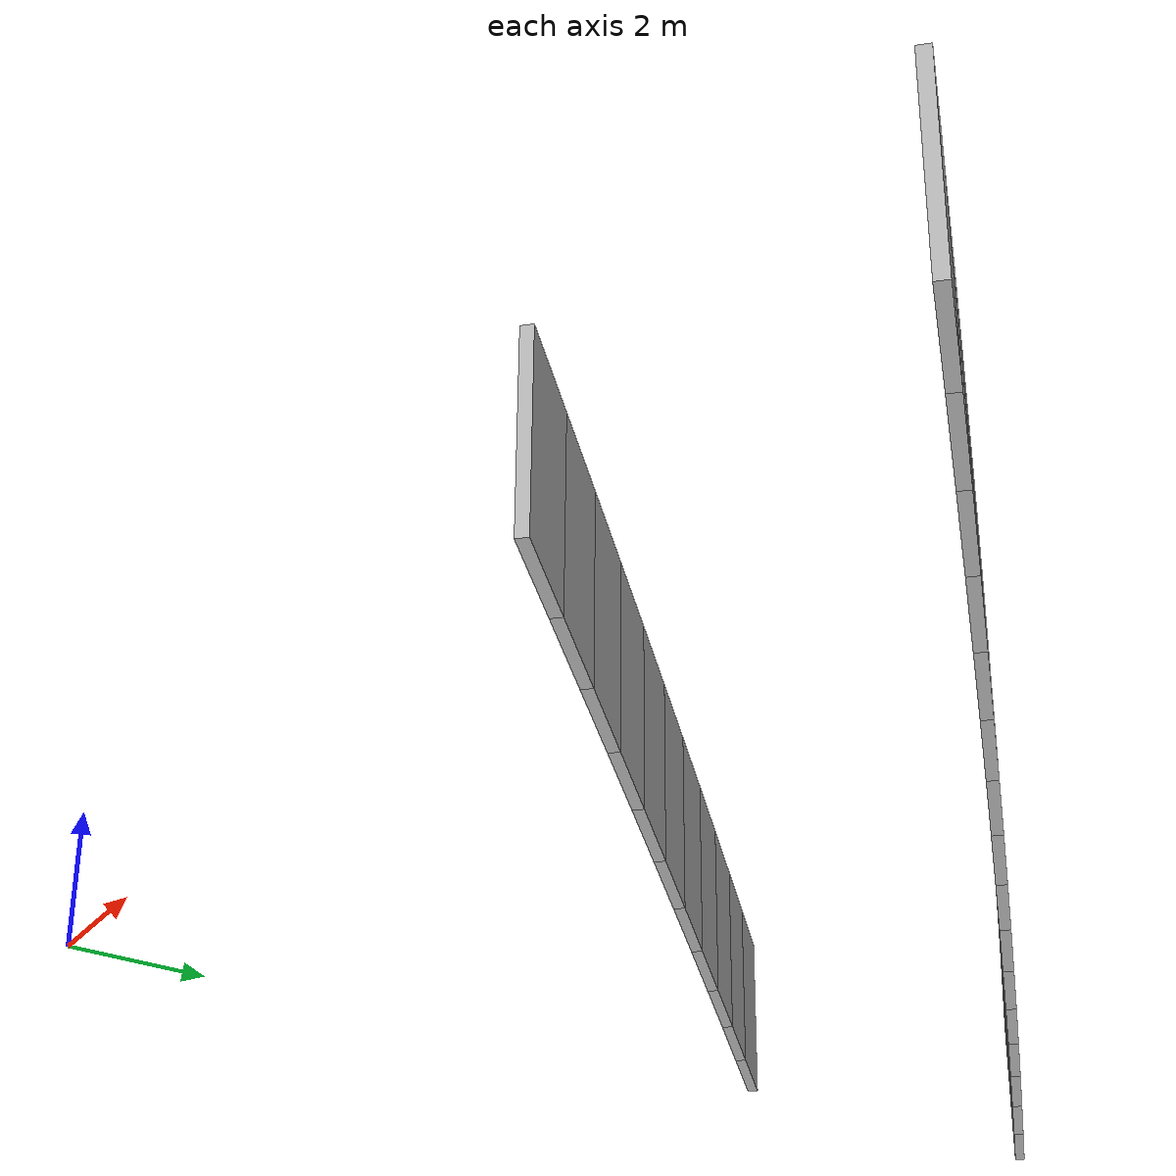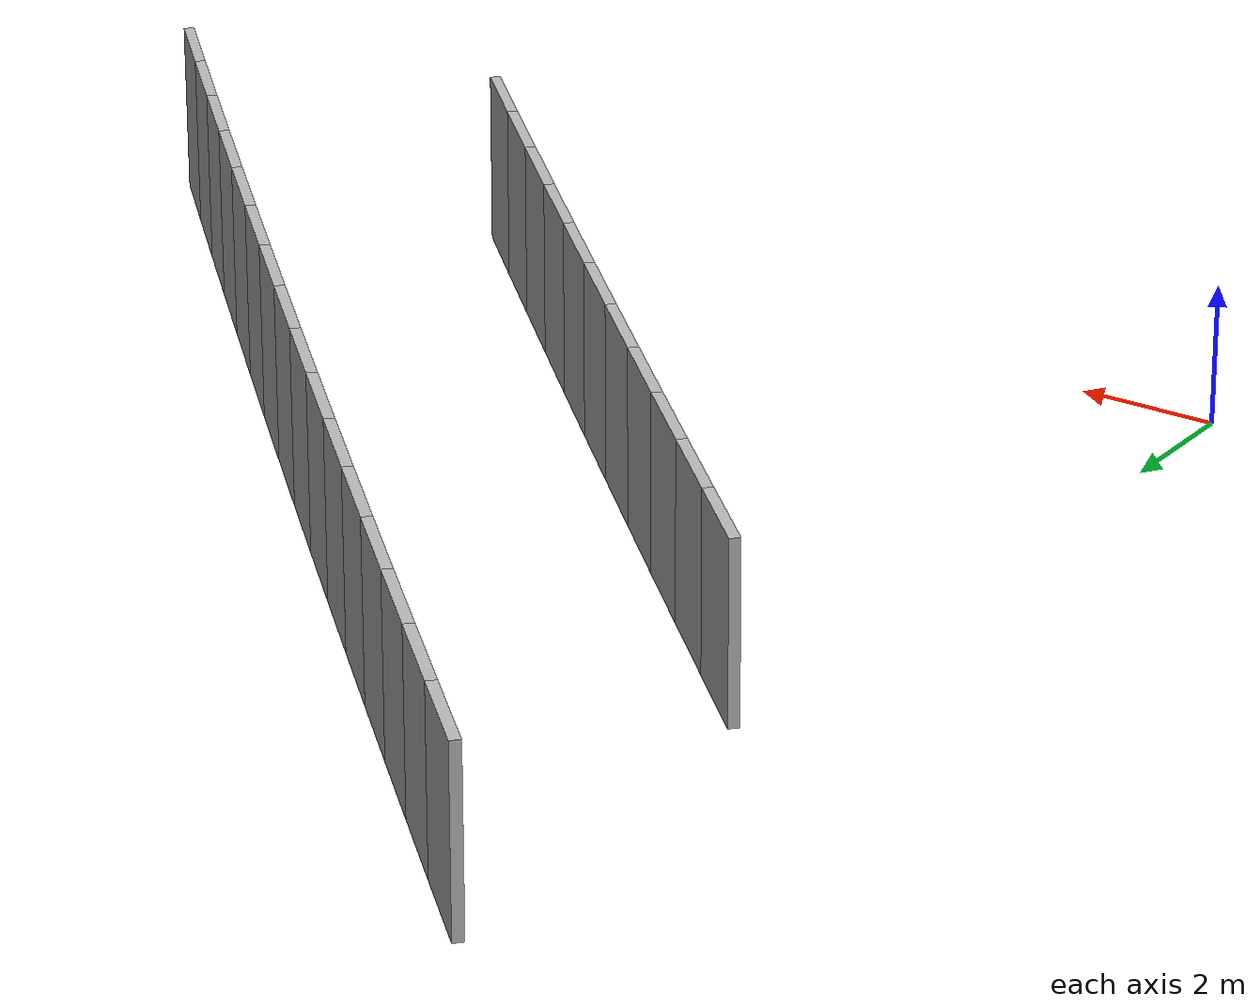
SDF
<?xml version="1.0" ?>
<sdf version="1.6">
  <model name="sps_4041">
    <pose frame="">0 0 0 0 -0 0</pose>
    <static>1</static>
    <self_collide>0</self_collide>
    <allow_auto_disable>0</allow_auto_disable>
    <link name="Wall10414">
      <kinematic>0</kinematic>
      <gravity>1</gravity>
      <self_collide>0</self_collide>
      <collision name="collision">
        <geometry>
          <box>
            <size>1.49671 0.15 2.5</size>
          </box>
        </geometry>
        <pose frame="">0 0 0 0 -0 0</pose>
      </collision>
      <visual name="visual">
        <geometry>
          <box>
            <size>1.49671 0.15 2.5</size>
          </box>
        </geometry>
        <pose frame="">0 0 0 0 -0 0</pose>
        <cast_shadows>1</cast_shadows>
        <transparency>0.0</transparency>
      </visual>
      <pose frame="">11.5282 0.227706 1.25 0 -0 2.35046</pose>
    </link>
    <link name="Wall10415">
      <kinematic>0</kinematic>
      <gravity>1</gravity>
      <self_collide>0</self_collide>
      <collision name="collision">
        <geometry>
          <box>
            <size>1.49636 0.15 2.5</size>
          </box>
        </geometry>
        <pose frame="">0 0 0 0 -0 0</pose>
      </collision>
      <visual name="visual">
        <geometry>
          <box>
            <size>1.49636 0.15 2.5</size>
          </box>
        </geometry>
        <pose frame="">0 0 0 0 -0 0</pose>
        <cast_shadows>1</cast_shadows>
        <transparency>0.0</transparency>
      </visual>
      <pose frame="">10.4752 1.29109 1.25 0 -0 2.35213</pose>
    </link>
    <link name="Wall10416">
      <kinematic>0</kinematic>
      <gravity>1</gravity>
      <self_collide>0</self_collide>
      <collision name="collision">
        <geometry>
          <box>
            <size>1.49669 0.15 2.5</size>
          </box>
        </geometry>
        <pose frame="">0 0 0 0 -0 0</pose>
      </collision>
      <visual name="visual">
        <geometry>
          <box>
            <size>1.49669 0.15 2.5</size>
          </box>
        </geometry>
        <pose frame="">0 0 0 0 -0 0</pose>
        <cast_shadows>1</cast_shadows>
        <transparency>0.0</transparency>
      </visual>
      <pose frame="">9.42055 2.35289 1.25 0 -0 2.35346</pose>
    </link>
    <link name="Wall10417">
      <kinematic>0</kinematic>
      <gravity>1</gravity>
      <self_collide>0</self_collide>
      <collision name="collision">
        <geometry>
          <box>
            <size>1.49639 0.15 2.5</size>
          </box>
        </geometry>
        <pose frame="">0 0 0 0 -0 0</pose>
      </collision>
      <visual name="visual">
        <geometry>
          <box>
            <size>1.49639 0.15 2.5</size>
          </box>
        </geometry>
        <pose frame="">0 0 0 0 -0 0</pose>
        <cast_shadows>1</cast_shadows>
        <transparency>0.0</transparency>
      </visual>
      <pose frame="">8.36434 3.4131 1.25 0 -0 2.35516</pose>
    </link>
    <link name="Wall10418">
      <kinematic>0</kinematic>
      <gravity>1</gravity>
      <self_collide>0</self_collide>
      <collision name="collision">
        <geometry>
          <box>
            <size>1.49652 0.15 2.5</size>
          </box>
        </geometry>
        <pose frame="">0 0 0 0 -0 0</pose>
      </collision>
      <visual name="visual">
        <geometry>
          <box>
            <size>1.49652 0.15 2.5</size>
          </box>
        </geometry>
        <pose frame="">0 0 0 0 -0 0</pose>
        <cast_shadows>1</cast_shadows>
        <transparency>0.0</transparency>
      </visual>
      <pose frame="">7.30645 4.47151 1.25 0 -0 2.35674</pose>
    </link>
    <link name="Wall10419">
      <kinematic>0</kinematic>
      <gravity>1</gravity>
      <self_collide>0</self_collide>
      <collision name="collision">
        <geometry>
          <box>
            <size>1.49652 0.15 2.5</size>
          </box>
        </geometry>
        <pose frame="">0 0 0 0 -0 0</pose>
      </collision>
      <visual name="visual">
        <geometry>
          <box>
            <size>1.49652 0.15 2.5</size>
          </box>
        </geometry>
        <pose frame="">0 0 0 0 -0 0</pose>
        <cast_shadows>1</cast_shadows>
        <transparency>0.0</transparency>
      </visual>
      <pose frame="">6.24685 5.5283 1.25 0 -0 2.3583</pose>
    </link>
    <link name="Wall10420">
      <kinematic>0</kinematic>
      <gravity>1</gravity>
      <self_collide>0</self_collide>
      <collision name="collision">
        <geometry>
          <box>
            <size>1.49653 0.15 2.5</size>
          </box>
        </geometry>
        <pose frame="">0 0 0 0 -0 0</pose>
      </collision>
      <visual name="visual">
        <geometry>
          <box>
            <size>1.49653 0.15 2.5</size>
          </box>
        </geometry>
        <pose frame="">0 0 0 0 -0 0</pose>
        <cast_shadows>1</cast_shadows>
        <transparency>0.0</transparency>
      </visual>
      <pose frame="">5.18554 6.58339 1.25 0 -0 2.35997</pose>
    </link>
    <link name="Wall10421">
      <kinematic>0</kinematic>
      <gravity>1</gravity>
      <self_collide>0</self_collide>
      <collision name="collision">
        <geometry>
          <box>
            <size>1.49654 0.15 2.5</size>
          </box>
        </geometry>
        <pose frame="">0 0 0 0 -0 0</pose>
      </collision>
      <visual name="visual">
        <geometry>
          <box>
            <size>1.49654 0.15 2.5</size>
          </box>
        </geometry>
        <pose frame="">0 0 0 0 -0 0</pose>
        <cast_shadows>1</cast_shadows>
        <transparency>0.0</transparency>
      </visual>
      <pose frame="">4.12255 7.63679 1.25 0 -0 2.36147</pose>
    </link>
    <link name="Wall10422">
      <kinematic>0</kinematic>
      <gravity>1</gravity>
      <self_collide>0</self_collide>
      <collision name="collision">
        <geometry>
          <box>
            <size>1.49642 0.15 2.5</size>
          </box>
        </geometry>
        <pose frame="">0 0 0 0 -0 0</pose>
      </collision>
      <visual name="visual">
        <geometry>
          <box>
            <size>1.49642 0.15 2.5</size>
          </box>
        </geometry>
        <pose frame="">0 0 0 0 -0 0</pose>
        <cast_shadows>1</cast_shadows>
        <transparency>0.0</transparency>
      </visual>
      <pose frame="">3.05794 8.68849 1.25 0 -0 2.36312</pose>
    </link>
    <link name="Wall10423">
      <kinematic>0</kinematic>
      <gravity>1</gravity>
      <self_collide>0</self_collide>
      <collision name="collision">
        <geometry>
          <box>
            <size>1.49657 0.15 2.5</size>
          </box>
        </geometry>
        <pose frame="">0 0 0 0 -0 0</pose>
      </collision>
      <visual name="visual">
        <geometry>
          <box>
            <size>1.49657 0.15 2.5</size>
          </box>
        </geometry>
        <pose frame="">0 0 0 0 -0 0</pose>
        <cast_shadows>1</cast_shadows>
        <transparency>0.0</transparency>
      </visual>
      <pose frame="">1.99163 9.73848 1.25 0 -0 2.3647</pose>
    </link>
    <link name="Wall10424">
      <kinematic>0</kinematic>
      <gravity>1</gravity>
      <self_collide>0</self_collide>
      <collision name="collision">
        <geometry>
          <box>
            <size>1.49659 0.15 2.5</size>
          </box>
        </geometry>
        <pose frame="">0 0 0 0 -0 0</pose>
      </collision>
      <visual name="visual">
        <geometry>
          <box>
            <size>1.49659 0.15 2.5</size>
          </box>
        </geometry>
        <pose frame="">0 0 0 0 -0 0</pose>
        <cast_shadows>1</cast_shadows>
        <transparency>0.0</transparency>
      </visual>
      <pose frame="">0.923637 10.7869 1.25 0 -0 2.3662</pose>
    </link>
    <link name="Wall11009">
      <kinematic>0</kinematic>
      <gravity>1</gravity>
      <self_collide>0</self_collide>
      <collision name="collision">
        <geometry>
          <box>
            <size>1.50309 0.15 2.5</size>
          </box>
        </geometry>
        <pose frame="">0 0 0 0 -0 0</pose>
      </collision>
      <visual name="visual">
        <geometry>
          <box>
            <size>1.50309 0.15 2.5</size>
          </box>
        </geometry>
        <pose frame="">0 0 0 0 -0 0</pose>
        <cast_shadows>1</cast_shadows>
        <transparency>0.0</transparency>
      </visual>
      <pose frame="">16.5821 0.997176 1.25 0 -0 2.34735</pose>
    </link>
    <link name="Wall11010">
      <kinematic>0</kinematic>
      <gravity>1</gravity>
      <self_collide>0</self_collide>
      <collision name="collision">
        <geometry>
          <box>
            <size>1.50295 0.15 2.5</size>
          </box>
        </geometry>
        <pose frame="">0 0 0 0 -0 0</pose>
      </collision>
      <visual name="visual">
        <geometry>
          <box>
            <size>1.50295 0.15 2.5</size>
          </box>
        </geometry>
        <pose frame="">0 0 0 0 -0 0</pose>
        <cast_shadows>1</cast_shadows>
        <transparency>0.0</transparency>
      </visual>
      <pose frame="">15.528 2.06859 1.25 0 -0 2.34876</pose>
    </link>
    <link name="Wall11011">
      <kinematic>0</kinematic>
      <gravity>1</gravity>
      <self_collide>0</self_collide>
      <collision name="collision">
        <geometry>
          <box>
            <size>1.50314 0.15 2.5</size>
          </box>
        </geometry>
        <pose frame="">0 0 0 0 -0 0</pose>
      </collision>
      <visual name="visual">
        <geometry>
          <box>
            <size>1.50314 0.15 2.5</size>
          </box>
        </geometry>
        <pose frame="">0 0 0 0 -0 0</pose>
        <cast_shadows>1</cast_shadows>
        <transparency>0.0</transparency>
      </visual>
      <pose frame="">14.4723 3.13838 1.25 0 -0 2.35045</pose>
    </link>
    <link name="Wall11012">
      <kinematic>0</kinematic>
      <gravity>1</gravity>
      <self_collide>0</self_collide>
      <collision name="collision">
        <geometry>
          <box>
            <size>1.50322 0.15 2.5</size>
          </box>
        </geometry>
        <pose frame="">0 0 0 0 -0 0</pose>
      </collision>
      <visual name="visual">
        <geometry>
          <box>
            <size>1.50322 0.15 2.5</size>
          </box>
        </geometry>
        <pose frame="">0 0 0 0 -0 0</pose>
        <cast_shadows>1</cast_shadows>
        <transparency>0.0</transparency>
      </visual>
      <pose frame="">13.4147 4.20659 1.25 0 -0 2.35195</pose>
    </link>
    <link name="Wall11013">
      <kinematic>0</kinematic>
      <gravity>1</gravity>
      <self_collide>0</self_collide>
      <collision name="collision">
        <geometry>
          <box>
            <size>1.50304 0.15 2.5</size>
          </box>
        </geometry>
        <pose frame="">0 0 0 0 -0 0</pose>
      </collision>
      <visual name="visual">
        <geometry>
          <box>
            <size>1.50304 0.15 2.5</size>
          </box>
        </geometry>
        <pose frame="">0 0 0 0 -0 0</pose>
        <cast_shadows>1</cast_shadows>
        <transparency>0.0</transparency>
      </visual>
      <pose frame="">12.3555 5.27312 1.25 0 -0 2.35355</pose>
    </link>
    <link name="Wall11014">
      <kinematic>0</kinematic>
      <gravity>1</gravity>
      <self_collide>0</self_collide>
      <collision name="collision">
        <geometry>
          <box>
            <size>1.50286 0.15 2.5</size>
          </box>
        </geometry>
        <pose frame="">0 0 0 0 -0 0</pose>
      </collision>
      <visual name="visual">
        <geometry>
          <box>
            <size>1.50286 0.15 2.5</size>
          </box>
        </geometry>
        <pose frame="">0 0 0 0 -0 0</pose>
        <cast_shadows>1</cast_shadows>
        <transparency>0.0</transparency>
      </visual>
      <pose frame="">11.2947 6.33781 1.25 0 -0 2.35516</pose>
    </link>
    <link name="Wall11015">
      <kinematic>0</kinematic>
      <gravity>1</gravity>
      <self_collide>0</self_collide>
      <collision name="collision">
        <geometry>
          <box>
            <size>1.50316 0.15 2.5</size>
          </box>
        </geometry>
        <pose frame="">0 0 0 0 -0 0</pose>
      </collision>
      <visual name="visual">
        <geometry>
          <box>
            <size>1.50316 0.15 2.5</size>
          </box>
        </geometry>
        <pose frame="">0 0 0 0 -0 0</pose>
        <cast_shadows>1</cast_shadows>
        <transparency>0.0</transparency>
      </visual>
      <pose frame="">10.2322 7.40089 1.25 0 -0 2.35668</pose>
    </link>
    <link name="Wall11016">
      <kinematic>0</kinematic>
      <gravity>1</gravity>
      <self_collide>0</self_collide>
      <collision name="collision">
        <geometry>
          <box>
            <size>1.50304 0.15 2.5</size>
          </box>
        </geometry>
        <pose frame="">0 0 0 0 -0 0</pose>
      </collision>
      <visual name="visual">
        <geometry>
          <box>
            <size>1.50304 0.15 2.5</size>
          </box>
        </geometry>
        <pose frame="">0 0 0 0 -0 0</pose>
        <cast_shadows>1</cast_shadows>
        <transparency>0.0</transparency>
      </visual>
      <pose frame="">9.16787 8.46229 1.25 0 -0 2.35843</pose>
    </link>
    <link name="Wall11017">
      <kinematic>0</kinematic>
      <gravity>1</gravity>
      <self_collide>0</self_collide>
      <collision name="collision">
        <geometry>
          <box>
            <size>1.50317 0.15 2.5</size>
          </box>
        </geometry>
        <pose frame="">0 0 0 0 -0 0</pose>
      </collision>
      <visual name="visual">
        <geometry>
          <box>
            <size>1.50317 0.15 2.5</size>
          </box>
        </geometry>
        <pose frame="">0 0 0 0 -0 0</pose>
        <cast_shadows>1</cast_shadows>
        <transparency>0.0</transparency>
      </visual>
      <pose frame="">8.10186 9.52199 1.25 0 -0 2.3599</pose>
    </link>
    <link name="Wall11018">
      <kinematic>0</kinematic>
      <gravity>1</gravity>
      <self_collide>0</self_collide>
      <collision name="collision">
        <geometry>
          <box>
            <size>1.50288 0.15 2.5</size>
          </box>
        </geometry>
        <pose frame="">0 0 0 0 -0 0</pose>
      </collision>
      <visual name="visual">
        <geometry>
          <box>
            <size>1.50288 0.15 2.5</size>
          </box>
        </geometry>
        <pose frame="">0 0 0 0 -0 0</pose>
        <cast_shadows>1</cast_shadows>
        <transparency>0.0</transparency>
      </visual>
      <pose frame="">7.03426 10.58 1.25 0 -0 2.36154</pose>
    </link>
    <link name="Wall11019">
      <kinematic>0</kinematic>
      <gravity>1</gravity>
      <self_collide>0</self_collide>
      <collision name="collision">
        <geometry>
          <box>
            <size>1.50307 0.15 2.5</size>
          </box>
        </geometry>
        <pose frame="">0 0 0 0 -0 0</pose>
      </collision>
      <visual name="visual">
        <geometry>
          <box>
            <size>1.50307 0.15 2.5</size>
          </box>
        </geometry>
        <pose frame="">0 0 0 0 -0 0</pose>
        <cast_shadows>1</cast_shadows>
        <transparency>0.0</transparency>
      </visual>
      <pose frame="">5.96508 11.6363 1.25 0 -0 2.36297</pose>
    </link>
    <link name="Wall11020">
      <kinematic>0</kinematic>
      <gravity>1</gravity>
      <self_collide>0</self_collide>
      <collision name="collision">
        <geometry>
          <box>
            <size>1.50313 0.15 2.5</size>
          </box>
        </geometry>
        <pose frame="">0 0 0 0 -0 0</pose>
      </collision>
      <visual name="visual">
        <geometry>
          <box>
            <size>1.50313 0.15 2.5</size>
          </box>
        </geometry>
        <pose frame="">0 0 0 0 -0 0</pose>
        <cast_shadows>1</cast_shadows>
        <transparency>0.0</transparency>
      </visual>
      <pose frame="">4.89416 12.691 1.25 0 -0 2.36466</pose>
    </link>
    <link name="Wall11021">
      <kinematic>0</kinematic>
      <gravity>1</gravity>
      <self_collide>0</self_collide>
      <collision name="collision">
        <geometry>
          <box>
            <size>1.50324 0.15 2.5</size>
          </box>
        </geometry>
        <pose frame="">0 0 0 0 -0 0</pose>
      </collision>
      <visual name="visual">
        <geometry>
          <box>
            <size>1.50324 0.15 2.5</size>
          </box>
        </geometry>
        <pose frame="">0 0 0 0 -0 0</pose>
        <cast_shadows>1</cast_shadows>
        <transparency>0.0</transparency>
      </visual>
      <pose frame="">3.82143 13.744 1.25 0 -0 2.36627</pose>
    </link>
    <link name="Wall11022">
      <kinematic>0</kinematic>
      <gravity>1</gravity>
      <self_collide>0</self_collide>
      <collision name="collision">
        <geometry>
          <box>
            <size>1.50297 0.15 2.5</size>
          </box>
        </geometry>
        <pose frame="">0 0 0 0 -0 0</pose>
      </collision>
      <visual name="visual">
        <geometry>
          <box>
            <size>1.50297 0.15 2.5</size>
          </box>
        </geometry>
        <pose frame="">0 0 0 0 -0 0</pose>
        <cast_shadows>1</cast_shadows>
        <transparency>0.0</transparency>
      </visual>
      <pose frame="">2.74703 14.7952 1.25 0 -0 2.36797</pose>
    </link>
    <link name="Wall11023">
      <kinematic>0</kinematic>
      <gravity>1</gravity>
      <self_collide>0</self_collide>
      <collision name="collision">
        <geometry>
          <box>
            <size>1.50316 0.15 2.5</size>
          </box>
        </geometry>
        <pose frame="">0 0 0 0 -0 0</pose>
      </collision>
      <visual name="visual">
        <geometry>
          <box>
            <size>1.50316 0.15 2.5</size>
          </box>
        </geometry>
        <pose frame="">0 0 0 0 -0 0</pose>
        <cast_shadows>1</cast_shadows>
        <transparency>0.0</transparency>
      </visual>
      <pose frame="">1.67104 15.8447 1.25 0 -0 2.36934</pose>
    </link>
    <link name="Wall11024">
      <kinematic>0</kinematic>
      <gravity>1</gravity>
      <self_collide>0</self_collide>
      <collision name="collision">
        <geometry>
          <box>
            <size>1.5029 0.15 2.5</size>
          </box>
        </geometry>
        <pose frame="">0 0 0 0 -0 0</pose>
      </collision>
      <visual name="visual">
        <geometry>
          <box>
            <size>1.5029 0.15 2.5</size>
          </box>
        </geometry>
        <pose frame="">0 0 0 0 -0 0</pose>
        <cast_shadows>1</cast_shadows>
        <transparency>0.0</transparency>
      </visual>
      <pose frame="">0.593467 16.8925 1.25 0 -0 2.37104</pose>
    </link>
  </model>
</sdf>
